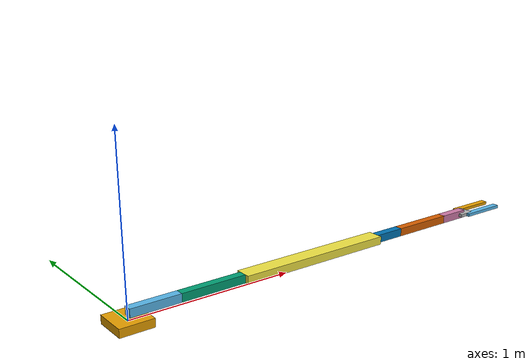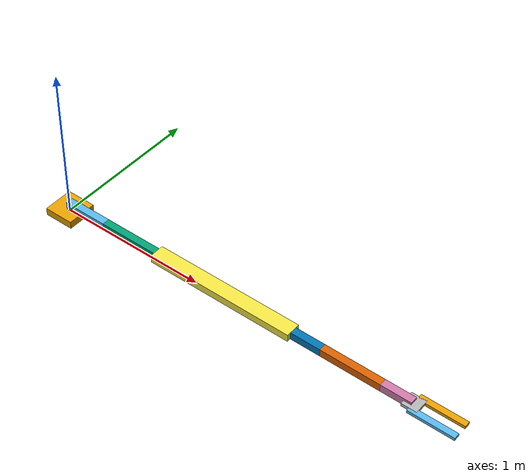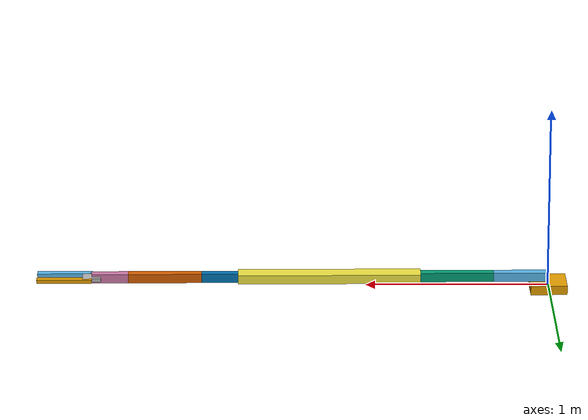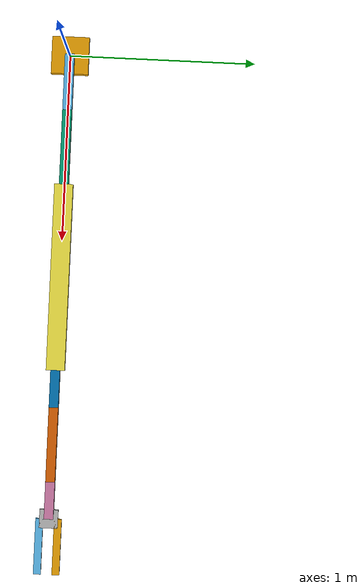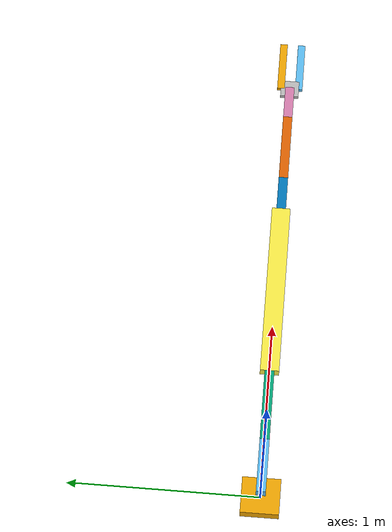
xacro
<?xml version="1.0"?>
<robot xmlns:xacro="http://ros.org/wiki/xacro" name="arm_6dof">

  <!-- Common properties -->
  <xacro:property name="effort" value="1"/>
  <xacro:property name="velocity" value="1.0"/>
  <xacro:property name="gripper_velocity" value="0.1"/>
  <xacro:property name="gripper_limit" value="0.03"/>

  <!-- Base -->
  <link name="base_link">
    <visual><geometry><box size="0.2 0.2 0.05"/></geometry></visual>
    <collision><geometry><box size="0.2 0.2 0.05"/></geometry></collision>
  </link>

  <!-- Macro for arm joint and link -->
  <xacro:macro name="arm_segment" params="joint_name parent_link child_link origin_xyz link_length link_size">
    <joint name="${joint_name}" type="revolute">
      <origin xyz="${origin_xyz}"/>
      <axis xyz="0 0 1"/>
      <parent link="${parent_link}"/>
      <child link="${child_link}"/>
      <limit effort="${effort}" velocity="${velocity}" lower="-3.14" upper="3.14"/>
    </joint>
    <link name="${child_link}">
      <visual><origin xyz="${link_length} 0 0"/><geometry><box size="${link_size}"/></geometry></visual>
      <collision><origin xyz="${link_length} 0 0"/><geometry><box size="${link_size}"/></geometry></collision>
    </link>
  </xacro:macro>

  <!-- Define each joint/link -->
  <xacro:arm_segment joint_name="joint1" parent_link="base_link" child_link="link1" origin_xyz="0 0 0.05" link_length="0.15" link_size="0.3 0.05 0.05"/>
  <xacro:arm_segment joint_name="joint2" parent_link="link1" child_link="link2" origin_xyz="0.3 0 0" link_length="0.2" link_size="0.4 0.05 0.05"/>
  <xacro:arm_segment joint_name="joint3" parent_link="link2" child_link="link3" origin_xyz="0.4 0 0" link_length="0.5" link_size="1.0 0.1 0.05"/>
  <xacro:arm_segment joint_name="joint4" parent_link="link3" child_link="link4" origin_xyz="1.0 0 0" link_length="0.1" link_size="0.2 0.05 0.05"/>
  <xacro:arm_segment joint_name="joint5" parent_link="link4" child_link="link5" origin_xyz="0.2 0 0" link_length="0.2" link_size="0.4 0.05 0.05"/>

  <!-- Joint 6 (different axis) -->
  <joint name="joint6" type="revolute">
    <origin xyz="0.4 0 0"/><axis xyz="1 0 0"/>
    <parent link="link5"/><child link="link6"/>
    <limit effort="${effort}" velocity="${velocity}" lower="-3.14" upper="3.14"/>
  </joint>
  <link name="link6">
    <visual><origin xyz="0.1 0 0"/><geometry><box size="0.2 0.05 0.05"/></geometry></visual>
    <collision><origin xyz="0.1 0 0"/><geometry><box size="0.2 0.05 0.05"/></geometry></collision>
  </link>

  <!-- Palm and gripper -->
  <joint name="gripper_base_joint" type="fixed">
    <origin xyz="0.2 0 0"/><parent link="link6"/><child link="palm_link"/>
  </joint>
  <link name="palm_link">
    <visual><geometry><box size="0.1 0.1 0.02"/></geometry></visual>
    <collision><geometry><box size="0.1 0.1 0.02"/></geometry></collision>
  </link>

  <!-- Gripper fingers -->
  <joint name="left_finger_joint" type="prismatic">
    <origin xyz="0.15 0.05 0"/><axis xyz="0 -1 0"/>
    <parent link="palm_link"/><child link="left_finger"/>
    <limit lower="0" upper="${gripper_limit}" effort="${effort}" velocity="${gripper_velocity}"/>
  </joint>
  <link name="left_finger">
    <visual><geometry><box size="0.3 0.04 0.02"/></geometry></visual>
    <collision><geometry><box size="0.3 0.04 0.02"/></geometry></collision>
  </link>

  <joint name="right_finger_joint" type="prismatic">
    <origin xyz="0.15 -0.05 0"/><axis xyz="0 1 0"/>
    <parent link="palm_link"/><child link="right_finger"/>
    <limit lower="0" upper="${gripper_limit}" effort="${effort}" velocity="${gripper_velocity}"/>
  </joint>
  <link name="right_finger">
    <visual><geometry><box size="0.3 0.04 0.02"/></geometry></visual>
    <collision><geometry><box size="0.3 0.04 0.02"/></geometry></collision>
  </link>

  <!-- ros2_control block -->
  <ros2_control name="FakeArmSystem" type="system">
    <hardware>
      <plugin>fake_components/GenericSystem</plugin>
    </hardware>
    <xacro:macro name="ros2_joint" params="name">
      <joint name="${name}">
        <command_interface name="position"/>
        <state_interface name="position"/>
        <state_interface name="velocity"/>
      </joint>
    </xacro:macro>

    <xacro:ros2_joint name="joint1"/>
    <xacro:ros2_joint name="joint2"/>
    <xacro:ros2_joint name="joint3"/>
    <xacro:ros2_joint name="joint4"/>
    <xacro:ros2_joint name="joint5"/>
    <xacro:ros2_joint name="joint6"/>
    <xacro:ros2_joint name="left_finger_joint"/>
    <xacro:ros2_joint name="right_finger_joint"/>
  </ros2_control>
</robot>
